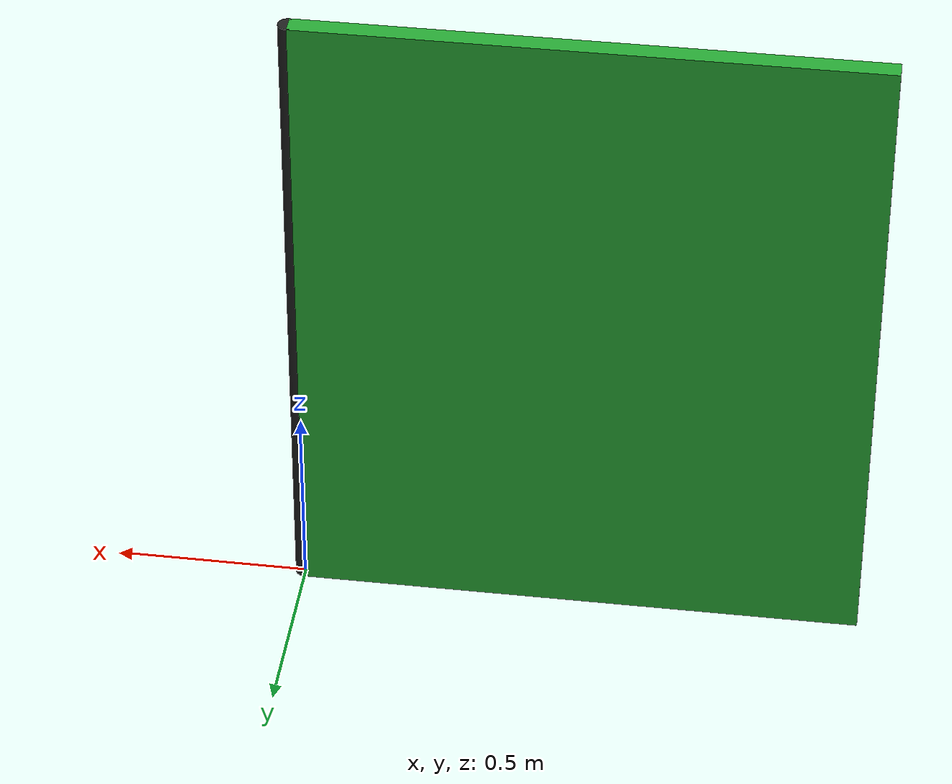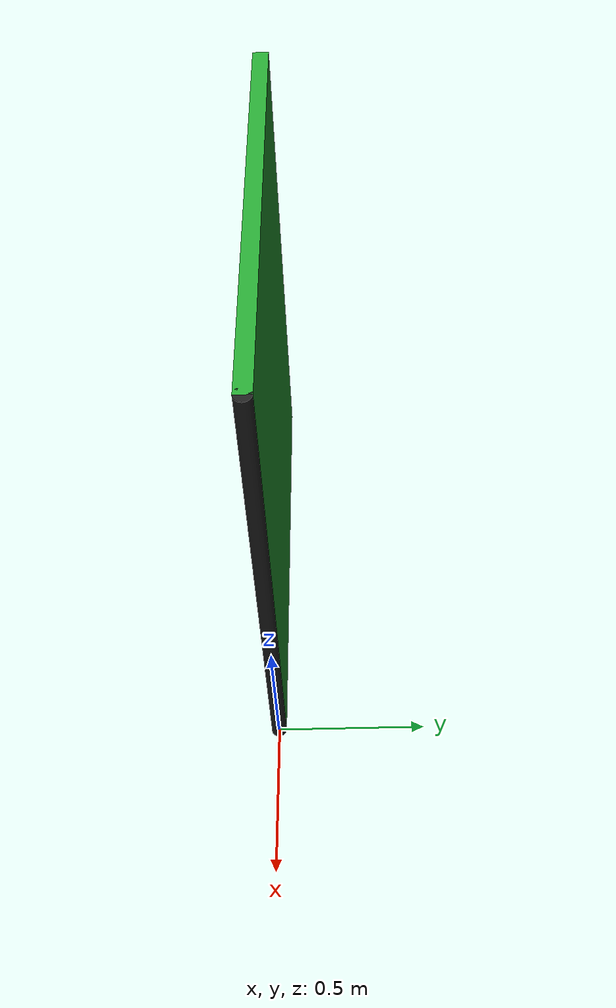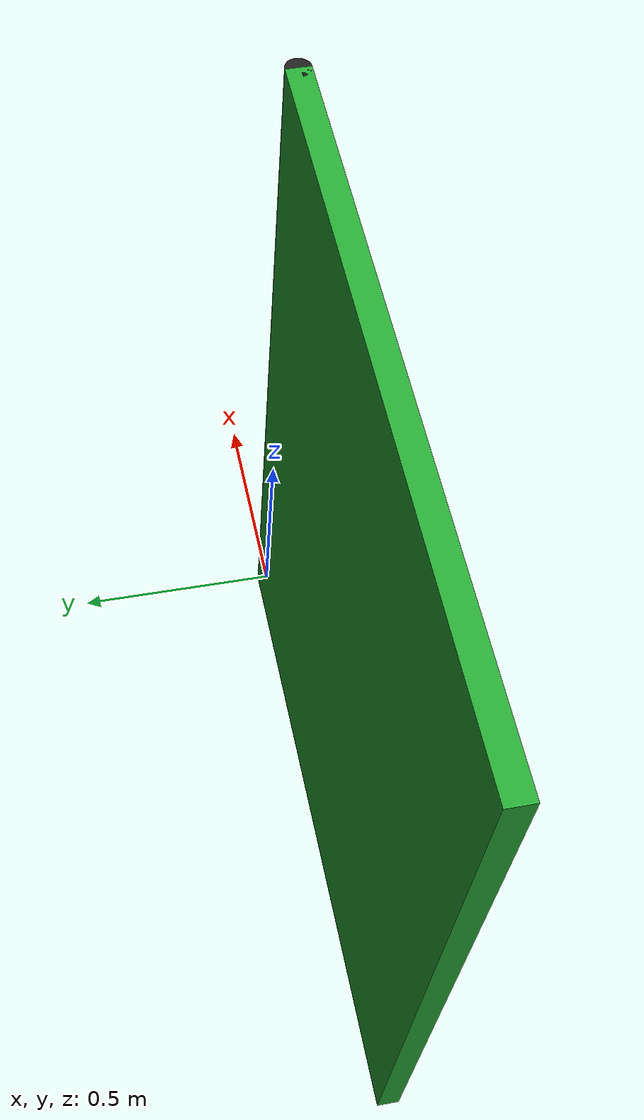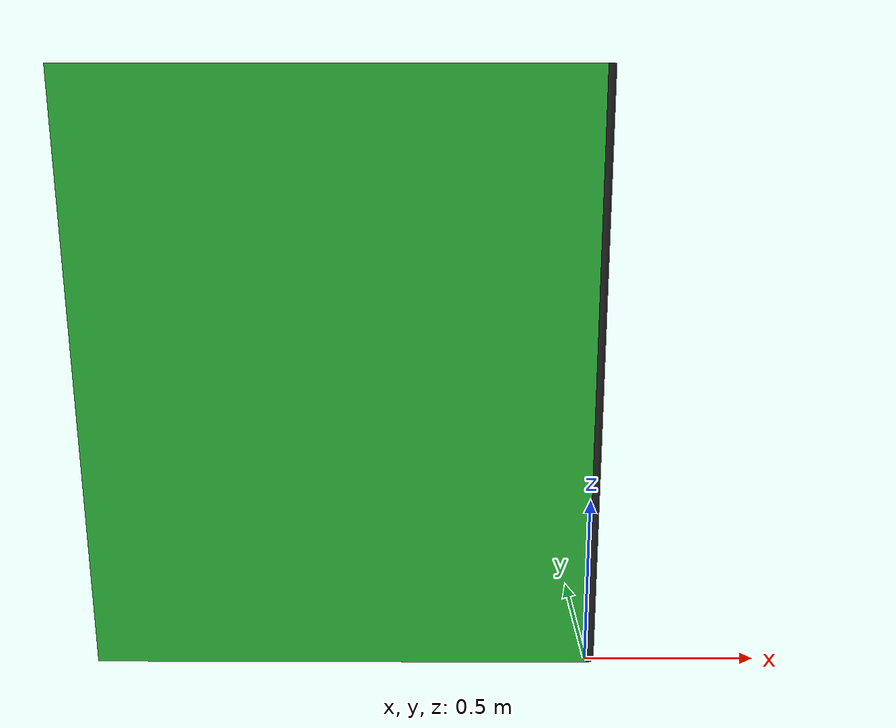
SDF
<?xml version="1.0" ?>
<sdf version="1.4">
    <model name="fixed_door">
        <static>true</static>
        <link name="door_link">
            <pose>-0.725 0 0.85 0 0 0</pose>
            <inertial>
                <mass>0.0001</mass>
            </inertial>
            <collision name="wall_link_0_geom">
                <pose>0 0 0 0 0 0</pose>
                <geometry>
                    <box>
                        <size>1.45 0.05 1.7</size>
                    </box>
                </geometry>
            </collision>
            <visual name="wall_link_0_visual">
                <pose>0 0 0 0 0 0</pose>
                <geometry>
                    <box>
                        <size>1.45 0.05 1.7</size>
                    </box>
                </geometry>
                <material>
                    <script>
                        <uri>file://media/materials/scripts/gazebo.material</uri>
                        <name>Gazebo/Green</name>
                    </script>
                </material>
            </visual>
        </link>
        <link name="hinge_link">
            <pose>-0.725 0 0.85 0 0 0</pose>
            <inertial>
                <mass>1000</mass>
            </inertial>
            <collision name="hinge_collision">
                <pose>0.725 0 0 0 0 0</pose>
                <geometry>
                    <cylinder>
                        <length>1.7</length>
                        <radius>0.025</radius>
                    </cylinder>
                </geometry>
            </collision>
            <visual name="hinge_visual">
                <pose>0.725 0 0 0 0 0</pose>
                <geometry>
                    <cylinder>
                        <length>1.7</length>
                        <radius>0.025</radius>
                    </cylinder>
                </geometry>
                <material>
                    <script>
                        <uri>file://media/materials/scripts/gazebo.material</uri>
                        <name>Gazebo/Black</name>
                    </script>
                </material>
            </visual>
        </link>
        <joint name="door_hinge" type="revolute">
            <pose>0.725 0 0 0 0 0</pose>
            <parent>hinge_link</parent>
            <child>door_link</child>
            <axis>
                <xyz>0 0 1</xyz>
                <dynamics>
                    <friction>10</friction>
                    <damping>1</damping>
                </dynamics>
            </axis>
        </joint>
        <joint name="door_fixed_to_ground" type="revolute">
            <parent>world</parent>
            <child>hinge_link</child>
            <axis>
                <xyz>1 1 1</xyz>
                <limit>
                    <lower>0</lower>
                    <upper>0</upper>
                </limit>
            </axis>
        </joint>
    </model>
</sdf>
